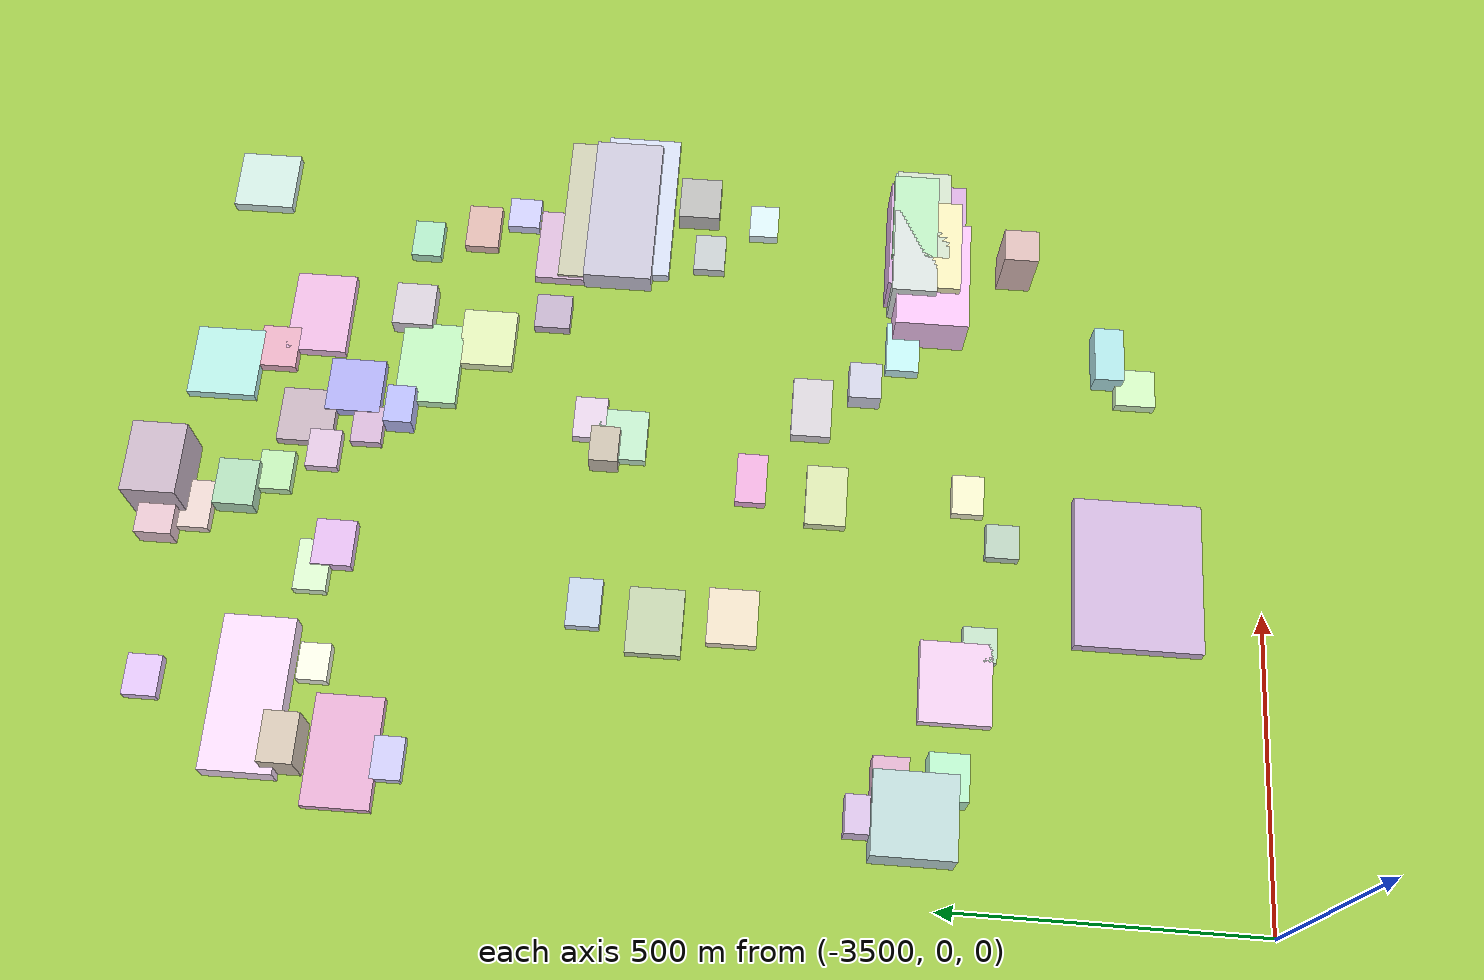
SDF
<sdf version="1.9">
 <world name="city_map">
  <model name="ground_plane">
   <static>1</static>
   <link name="link">
    <collision name="collision">
     <geometry><plane><normal>0 0 1</normal><size>11000 11000</size></plane></geometry>
    </collision>
    <visual name="visual">
     <geometry><plane><normal>0 0 1</normal><size>11000 11000</size></plane></geometry>
     <material>
      <ambient>0.551 0.712 0.210 1</ambient>
      <diffuse>0.651 0.812 0.310 1</diffuse>
      <specular>0.1 0.1 0.05 1</specular>
     </material>
    </visual>
   </link>
  </model>
  <model name="building_25714765">
   <static>1</static>
   <pose>-2955.97510524592 197.91584993413787 12.0 0 0 0</pose>
   <link name="link">
    <collision name="collision">
     <geometry><box><size>246.36152257760227 201.16530000050403 24.0</size></box></geometry>
    </collision>
    <visual name="visual">
     <cast_shadows>false</cast_shadows>
     <geometry><box><size>246.36152257760227 201.16530000050403 24.0</size></box></geometry>
     <material>
      <ambient>0.740 0.639 0.788 1</ambient>
      <diffuse>0.840 0.739 0.888 1</diffuse>
      <specular>0.252 0.222 0.266 1</specular>
      <emissive>0.01 0.01 0.01 1</emissive>
     </material>
    </visual>
   </link>
  </model>
  <model name="building_684449599">
   <static>1</static>
   <pose>-2346.618708589461 1037.980812742068 10.0 0 0 0</pose>
   <link name="link">
    <collision name="collision">
     <geometry><box><size>265.16789999996604 122.58789664311506 20</size></box></geometry>
    </collision>
    <visual name="visual">
     <cast_shadows>false</cast_shadows>
     <geometry><box><size>265.16789999996604 122.58789664311506 20</size></box></geometry>
     <material>
      <ambient>0.762 0.795 0.873 1</ambient>
      <diffuse>0.862 0.895 0.973 1</diffuse>
      <specular>0.259 0.268 0.292 1</specular>
      <emissive>0.01 0.01 0.01 1</emissive>
     </material>
    </visual>
   </link>
  </model>
  <model name="building_275146184">
   <static>1</static>
   <pose>-2369.0226320397446 1061.351405011938 21.11276111569614 0 0 0</pose>
   <link name="link">
    <collision name="collision">
     <geometry><box><size>261.10529999981225 113.28957244232905 42.22552223139228</size></box></geometry>
    </collision>
    <visual name="visual">
     <cast_shadows>false</cast_shadows>
     <geometry><box><size>261.10529999981225 113.28957244232905 42.22552223139228</size></box></geometry>
     <material>
      <ambient>0.717 0.703 0.778 1</ambient>
      <diffuse>0.817 0.803 0.878 1</diffuse>
      <specular>0.245 0.241 0.264 1</specular>
      <emissive>0.01 0.01 0.01 1</emissive>
     </material>
    </visual>
   </link>
  </model>
  <model name="building_468244094">
   <static>1</static>
   <pose>-2363.789195399912 1106.5859644838113 12.805303139556369 0 0 0</pose>
   <link name="link">
    <collision name="collision">
     <geometry><box><size>260.10629999996837 110.8043881858317 25.610606279112737</size></box></geometry>
    </collision>
    <visual name="visual">
     <cast_shadows>false</cast_shadows>
     <geometry><box><size>260.10629999996837 110.8043881858317 25.610606279112737</size></box></geometry>
     <material>
      <ambient>0.727 0.726 0.623 1</ambient>
      <diffuse>0.827 0.826 0.723 1</diffuse>
      <specular>0.248 0.248 0.217 1</specular>
      <emissive>0.01 0.01 0.01 1</emissive>
     </material>
    </visual>
   </link>
  </model>
  <model name="building_6302690">
   <static>1</static>
   <pose>-3257.278928376998 1552.8562125789 19.992731512019006 0 0 0</pose>
   <link name="link">
    <collision name="collision">
     <geometry><box><size>246.05679329559212 113.74170000023298 39.98546302403801</size></box></geometry>
    </collision>
    <visual name="visual">
     <cast_shadows>false</cast_shadows>
     <geometry><box><size>246.05679329559212 113.74170000023298 39.98546302403801</size></box></geometry>
     <material>
      <ambient>0.890 0.784 0.892 1</ambient>
      <diffuse>0.990 0.884 0.992 1</diffuse>
      <specular>0.297 0.265 0.298 1</specular>
      <emissive>0.01 0.01 0.01 1</emissive>
     </material>
    </visual>
   </link>
  </model>
  <model name="building_370139241">
   <static>1</static>
   <pose>-2404.8721287720805 550.7768881502016 42.0 0 0 0</pose>
   <link name="link">
    <collision name="collision">
     <geometry><box><size>189.18840000014114 124.50581138076582 84.0</size></box></geometry>
    </collision>
    <visual name="visual">
     <cast_shadows>false</cast_shadows>
     <geometry><box><size>189.18840000014114 124.50581138076582 84.0</size></box></geometry>
     <material>
      <ambient>0.777 0.610 0.803 1</ambient>
      <diffuse>0.877 0.710 0.903 1</diffuse>
      <specular>0.263 0.213 0.271 1</specular>
      <emissive>0.01 0.01 0.01 1</emissive>
     </material>
    </visual>
   </link>
  </model>
  <model name="building_857352540">
   <static>1</static>
   <pose>-2476.873180641099 538.8608444544831 42.0 0 0 0</pose>
   <link name="link">
    <collision name="collision">
     <geometry><box><size>187.90114202199183 118.60350000026187 84.0</size></box></geometry>
    </collision>
    <visual name="visual">
     <cast_shadows>false</cast_shadows>
     <geometry><box><size>187.90114202199183 118.60350000026187 84.0</size></box></geometry>
     <material>
      <ambient>0.891 0.700 0.885 1</ambient>
      <diffuse>0.991 0.800 0.985 1</diffuse>
      <specular>0.297 0.240 0.296 1</specular>
      <emissive>0.01 0.01 0.01 1</emissive>
     </material>
    </visual>
   </link>
  </model>
  <model name="building_561598546">
   <static>1</static>
   <pose>-3331.290340237867 1400.045698743589 10.0 0 0 0</pose>
   <link name="link">
    <collision name="collision">
     <geometry><box><size>175.08543400550755 106.42679999993021 20</size></box></geometry>
    </collision>
    <visual name="visual">
     <cast_shadows>false</cast_shadows>
     <geometry><box><size>175.08543400550755 106.42679999993021 20</size></box></geometry>
     <material>
      <ambient>0.826 0.607 0.755 1</ambient>
      <diffuse>0.926 0.707 0.855 1</diffuse>
      <specular>0.278 0.212 0.256 1</specular>
      <emissive>0.01 0.01 0.01 1</emissive>
     </material>
    </visual>
   </link>
  </model>
  <model name="building_623820183">
   <static>1</static>
   <pose>-3370.3349665781247 538.3425926976373 30.377859926171734 0 0 0</pose>
   <link name="link">
    <collision name="collision">
     <geometry><box><size>129.68130000037092 128.77458538619112 60.75571985234347</size></box></geometry>
    </collision>
    <visual name="visual">
     <cast_shadows>false</cast_shadows>
     <geometry><box><size>129.68130000037092 128.77458538619112 60.75571985234347</size></box></geometry>
     <material>
      <ambient>0.668 0.778 0.773 1</ambient>
      <diffuse>0.768 0.878 0.873 1</diffuse>
      <specular>0.230 0.263 0.262 1</specular>
      <emissive>0.01 0.01 0.01 1</emissive>
     </material>
    </visual>
   </link>
  </model>
  <model name="building_268401375">
   <static>1</static>
   <pose>-3152.317726136773 478.5498585153348 10.0 0 0 0</pose>
   <link name="link">
    <collision name="collision">
     <geometry><box><size>130.5927325714088 112.56509999989106 20</size></box></geometry>
    </collision>
    <visual name="visual">
     <cast_shadows>false</cast_shadows>
     <geometry><box><size>130.5927325714088 112.56509999989106 20</size></box></geometry>
     <material>
      <ambient>0.868 0.737 0.857 1</ambient>
      <diffuse>0.968 0.837 0.957 1</diffuse>
      <specular>0.290 0.251 0.287 1</specular>
      <emissive>0.01 0.01 0.01 1</emissive>
     </material>
    </visual>
   </link>
  </model>
  <model name="building_3232239">
   <static>1</static>
   <pose>-2431.6773196393583 541.4809125727706 50.0 0 0 0</pose>
   <link name="link">
    <collision name="collision">
     <geometry><box><size>159.97319999944892 90.35383014429841 100</size></box></geometry>
    </collision>
    <visual name="visual">
     <cast_shadows>false</cast_shadows>
     <geometry><box><size>159.97319999944892 90.35383014429841 100</size></box></geometry>
     <material>
      <ambient>0.887 0.863 0.661 1</ambient>
      <diffuse>0.987 0.963 0.761 1</diffuse>
      <specular>0.296 0.289 0.228 1</specular>
      <emissive>0.01 0.01 0.01 1</emissive>
     </material>
    </visual>
   </link>
  </model>
  <model name="building_490548782">
   <static>1</static>
   <pose>-2671.6375117947237 1354.9762242111226 10.0 0 0 0</pose>
   <link name="link">
    <collision name="collision">
     <geometry><box><size>142.10219999961282 100.14309373921627 20</size></box></geometry>
    </collision>
    <visual name="visual">
     <cast_shadows>false</cast_shadows>
     <geometry><box><size>142.10219999961282 100.14309373921627 20</size></box></geometry>
     <material>
      <ambient>0.675 0.869 0.668 1</ambient>
      <diffuse>0.775 0.969 0.768 1</diffuse>
      <specular>0.233 0.291 0.230 1</specular>
      <emissive>0.01 0.01 0.01 1</emissive>
     </material>
    </visual>
   </link>
  </model>
  <model name="building_629411819">
   <static>1</static>
   <pose>-2375.5355641070764 560.3015984678884 50.0 0 0 0</pose>
   <link name="link">
    <collision name="collision">
     <geometry><box><size>159.5180999996515 88.28729780091369 100</size></box></geometry>
    </collision>
    <visual name="visual">
     <cast_shadows>false</cast_shadows>
     <geometry><box><size>159.5180999996515 88.28729780091369 100</size></box></geometry>
     <material>
      <ambient>0.750 0.806 0.724 1</ambient>
      <diffuse>0.850 0.906 0.824 1</diffuse>
      <specular>0.255 0.272 0.247 1</specular>
      <emissive>0.01 0.01 0.01 1</emissive>
     </material>
    </visual>
   </link>
  </model>
  <model name="building_699712457">
   <static>1</static>
   <pose>-2592.5132394787643 1546.9713093336397 10.0 0 0 0</pose>
   <link name="link">
    <collision name="collision">
     <geometry><box><size>141.73256873768767 98.88990000018794 20</size></box></geometry>
    </collision>
    <visual name="visual">
     <cast_shadows>false</cast_shadows>
     <geometry><box><size>141.73256873768767 98.88990000018794 20</size></box></geometry>
     <material>
      <ambient>0.848 0.654 0.809 1</ambient>
      <diffuse>0.948 0.754 0.909 1</diffuse>
      <specular>0.284 0.226 0.273 1</specular>
      <emissive>0.01 0.01 0.01 1</emissive>
     </material>
    </visual>
   </link>
  </model>
  <model name="building_129499148">
   <static>1</static>
   <pose>-2694.057258564886 1689.4367140483969 10.0 0 0 0</pose>
   <link name="link">
    <collision name="collision">
     <geometry><box><size>119.24458913818034 111.67709999976694 20</size></box></geometry>
    </collision>
    <visual name="visual">
     <cast_shadows>false</cast_shadows>
     <geometry><box><size>119.24458913818034 111.67709999976694 20</size></box></geometry>
     <material>
      <ambient>0.642 0.851 0.823 1</ambient>
      <diffuse>0.742 0.951 0.923 1</diffuse>
      <specular>0.223 0.285 0.277 1</specular>
      <emissive>0.01 0.01 0.01 1</emissive>
     </material>
    </visual>
   </link>
  </model>
  <model name="building_857728000">
   <static>1</static>
   <pose>-2379.6414216712924 572.5649162779604 50.0 0 0 0</pose>
   <link name="link">
    <collision name="collision">
     <geometry><box><size>150.19410000031996 72.8084762671258 100</size></box></geometry>
    </collision>
    <visual name="visual">
     <cast_shadows>false</cast_shadows>
     <geometry><box><size>150.19410000031996 72.8084762671258 100</size></box></geometry>
     <material>
      <ambient>0.661 0.855 0.680 1</ambient>
      <diffuse>0.761 0.955 0.780 1</diffuse>
      <specular>0.228 0.286 0.234 1</specular>
      <emissive>0.01 0.01 0.01 1</emissive>
     </material>
    </visual>
   </link>
  </model>
  <model name="building_925492851">
   <static>1</static>
   <pose>-2434.33604529165 1157.7504567298179 10.0 0 0 0</pose>
   <link name="link">
    <collision name="collision">
     <geometry><box><size>127.09500000011786 85.4607197659712 20</size></box></geometry>
    </collision>
    <visual name="visual">
     <cast_shadows>false</cast_shadows>
     <geometry><box><size>127.09500000011786 85.4607197659712 20</size></box></geometry>
     <material>
      <ambient>0.780 0.655 0.775 1</ambient>
      <diffuse>0.880 0.755 0.875 1</diffuse>
      <specular>0.264 0.227 0.263 1</specular>
      <emissive>0.01 0.01 0.01 1</emissive>
     </material>
    </visual>
   </link>
  </model>
  <model name="building_929124349">
   <static>1</static>
   <pose>-2444.8944480141968 570.6746025242448 50.0 0 0 0</pose>
   <link name="link">
    <collision name="collision">
     <geometry><box><size>147.98519999974502 72.3560226533465 100</size></box></geometry>
    </collision>
    <visual name="visual">
     <cast_shadows>false</cast_shadows>
     <geometry><box><size>147.98519999974502 72.3560226533465 100</size></box></geometry>
     <material>
      <ambient>0.777 0.809 0.801 1</ambient>
      <diffuse>0.877 0.909 0.901 1</diffuse>
      <specular>0.263 0.273 0.270 1</specular>
      <emissive>0.01 0.01 0.01 1</emissive>
     </material>
    </visual>
   </link>
  </model>
  <model name="building_934483975">
   <static>1</static>
   <pose>-2903.196558103238 1750.7344680375506 46.32806958840219 0 0 0</pose>
   <link name="link">
    <collision name="collision">
     <geometry><box><size>118.23719999992477 87.5433765235199 92.65613917680437</size></box></geometry>
    </collision>
    <visual name="visual">
     <cast_shadows>false</cast_shadows>
     <geometry><box><size>118.23719999992477 87.5433765235199 92.65613917680437</size></box></geometry>
     <material>
      <ambient>0.713 0.637 0.705 1</ambient>
      <diffuse>0.813 0.737 0.805 1</diffuse>
      <specular>0.244 0.221 0.241 1</specular>
      <emissive>0.01 0.01 0.01 1</emissive>
     </material>
    </visual>
   </link>
  </model>
  <model name="building_835273102">
   <static>1</static>
   <pose>-2345.555755919729 1678.9257110352528 10.0 0 0 0</pose>
   <link name="link">
    <collision name="collision">
     <geometry><box><size>101.74260000039936 99.51573423051971 20</size></box></geometry>
    </collision>
    <visual name="visual">
     <cast_shadows>false</cast_shadows>
     <geometry><box><size>101.74260000039936 99.51573423051971 20</size></box></geometry>
     <material>
      <ambient>0.738 0.841 0.810 1</ambient>
      <diffuse>0.838 0.941 0.910 1</diffuse>
      <specular>0.251 0.282 0.273 1</specular>
      <emissive>0.01 0.01 0.01 1</emissive>
     </material>
    </visual>
   </link>
  </model>
  <model name="building_747862416">
   <static>1</static>
   <pose>-3088.7501537702274 947.063788895543 10.0 0 0 0</pose>
   <link name="link">
    <collision name="collision">
     <geometry><box><size>107.84759999997107 86.99701086928795 20</size></box></geometry>
    </collision>
    <visual name="visual">
     <cast_shadows>false</cast_shadows>
     <geometry><box><size>107.84759999997107 86.99701086928795 20</size></box></geometry>
     <material>
      <ambient>0.689 0.751 0.603 1</ambient>
      <diffuse>0.789 0.851 0.703 1</diffuse>
      <specular>0.237 0.255 0.211 1</specular>
      <emissive>0.01 0.01 0.01 1</emissive>
     </material>
    </visual>
   </link>
  </model>
  <model name="building_505794163">
   <static>1</static>
   <pose>-2618.62243027066 1264.9534855083332 10.0 0 0 0</pose>
   <link name="link">
    <collision name="collision">
     <geometry><box><size>100.19969999972034 89.1859832659298 20</size></box></geometry>
    </collision>
    <visual name="visual">
     <cast_shadows>false</cast_shadows>
     <geometry><box><size>100.19969999972034 89.1859832659298 20</size></box></geometry>
     <material>
      <ambient>0.806 0.865 0.643 1</ambient>
      <diffuse>0.906 0.965 0.743 1</diffuse>
      <specular>0.272 0.290 0.223 1</specular>
      <emissive>0.01 0.01 0.01 1</emissive>
     </material>
    </visual>
   </link>
  </model>
  <model name="building_551567213">
   <static>1</static>
   <pose>-2349.7679593203934 570.0523227687552 42.0 0 0 0</pose>
   <link name="link">
    <collision name="collision">
     <geometry><box><size>119.67020264794672 73.2266999999922 84.0</size></box></geometry>
    </collision>
    <visual name="visual">
     <cast_shadows>false</cast_shadows>
     <geometry><box><size>119.67020264794672 73.2266999999922 84.0</size></box></geometry>
     <material>
      <ambient>0.708 0.879 0.825 1</ambient>
      <diffuse>0.808 0.979 0.925 1</diffuse>
      <specular>0.242 0.294 0.277 1</specular>
      <emissive>0.01 0.01 0.01 1</emissive>
     </material>
    </visual>
   </link>
  </model>
  <model name="building_572625393">
   <static>1</static>
   <pose>-2722.0679111607524 1470.5210289948825 10.5 0 0 0</pose>
   <link name="link">
    <collision name="collision">
     <geometry><box><size>92.2950976559139 89.72130000030631 21.0</size></box></geometry>
    </collision>
    <visual name="visual">
     <cast_shadows>false</cast_shadows>
     <geometry><box><size>92.2950976559139 89.72130000030631 21.0</size></box></geometry>
     <material>
      <ambient>0.614 0.609 0.873 1</ambient>
      <diffuse>0.714 0.709 0.973 1</diffuse>
      <specular>0.214 0.213 0.292 1</specular>
      <emissive>0.01 0.01 0.01 1</emissive>
     </material>
    </visual>
   </link>
  </model>
  <model name="building_268097168">
   <static>1</static>
   <pose>-2780.615793035097 1540.701336296442 10.0 0 0 0</pose>
   <link name="link">
    <collision name="collision">
     <geometry><box><size>92.17898077526098 89.79899999963692 20</size></box></geometry>
    </collision>
    <visual name="visual">
     <cast_shadows>false</cast_shadows>
     <geometry><box><size>92.17898077526098 89.79899999963692 20</size></box></geometry>
     <material>
      <ambient>0.703 0.626 0.670 1</ambient>
      <diffuse>0.803 0.726 0.770 1</diffuse>
      <specular>0.241 0.218 0.231 1</specular>
      <emissive>0.01 0.01 0.01 1</emissive>
     </material>
    </visual>
   </link>
  </model>
  <model name="building_97481836">
   <static>1</static>
   <pose>-3072.5104610032295 826.9344304703311 10.0 0 0 0</pose>
   <link name="link">
    <collision name="collision">
     <geometry><box><size>90.8418060605524 78.76560000004673 20</size></box></geometry>
    </collision>
    <visual name="visual">
     <cast_shadows>false</cast_shadows>
     <geometry><box><size>90.8418060605524 78.76560000004673 20</size></box></geometry>
     <material>
      <ambient>0.860 0.803 0.707 1</ambient>
      <diffuse>0.960 0.903 0.807 1</diffuse>
      <specular>0.288 0.271 0.242 1</specular>
      <emissive>0.01 0.01 0.01 1</emissive>
     </material>
    </visual>
   </link>
  </model>
  <model name="building_176398613">
   <static>1</static>
   <pose>-2776.5705291465047 1025.9047789591546 10.0 0 0 0</pose>
   <link name="link">
    <collision name="collision">
     <geometry><box><size>87.06332350498677 78.77669999938774 20</size></box></geometry>
    </collision>
    <visual name="visual">
     <cast_shadows>false</cast_shadows>
     <geometry><box><size>87.06332350498677 78.77669999938774 20</size></box></geometry>
     <material>
      <ambient>0.687 0.849 0.722 1</ambient>
      <diffuse>0.787 0.949 0.822 1</diffuse>
      <specular>0.236 0.285 0.247 1</specular>
      <emissive>0.01 0.01 0.01 1</emissive>
     </material>
    </visual>
   </link>
  </model>
  <model name="building_426549582">
   <static>1</static>
   <pose>-2857.585191111405 691.9769420851726 10.0 0 0 0</pose>
   <link name="link">
    <collision name="collision">
     <geometry><box><size>101.58193462191385 65.3789999997727 20</size></box></geometry>
    </collision>
    <visual name="visual">
     <cast_shadows>false</cast_shadows>
     <geometry><box><size>101.58193462191385 65.3789999997727 20</size></box></geometry>
     <material>
      <ambient>0.779 0.824 0.614 1</ambient>
      <diffuse>0.879 0.924 0.714 1</diffuse>
      <specular>0.264 0.277 0.214 1</specular>
      <emissive>0.01 0.01 0.01 1</emissive>
     </material>
    </visual>
   </link>
  </model>
  <model name="building_135497535">
   <static>1</static>
   <pose>-2706.083822466621 723.17316266169 12.0 0 0 0</pose>
   <link name="link">
    <collision name="collision">
     <geometry><box><size>102.44190000068443 64.2700189507696 24.0</size></box></geometry>
    </collision>
    <visual name="visual">
     <cast_shadows>false</cast_shadows>
     <geometry><box><size>102.44190000068443 64.2700189507696 24.0</size></box></geometry>
     <material>
      <ambient>0.772 0.753 0.778 1</ambient>
      <diffuse>0.872 0.853 0.878 1</diffuse>
      <specular>0.262 0.256 0.263 1</specular>
      <emissive>0.01 0.01 0.01 1</emissive>
     </material>
    </visual>
   </link>
  </model>
  <model name="building_353279448">
   <static>1</static>
   <pose>-2949.144272306843 1700.5218043633672 10.0 0 0 0</pose>
   <link name="link">
    <collision name="collision">
     <geometry><box><size>80.97449999983297 64.10869315225803 20</size></box></geometry>
    </collision>
    <visual name="visual">
     <cast_shadows>false</cast_shadows>
     <geometry><box><size>80.97449999983297 64.10869315225803 20</size></box></geometry>
     <material>
      <ambient>0.845 0.761 0.739 1</ambient>
      <diffuse>0.945 0.861 0.839 1</diffuse>
      <specular>0.284 0.258 0.252 1</specular>
      <emissive>0.01 0.01 0.01 1</emissive>
     </material>
    </visual>
   </link>
  </model>
  <model name="building_178369548">
   <static>1</static>
   <pose>-2335.58909960276 933.0770639932326 19.5 0 0 0</pose>
   <link name="link">
    <collision name="collision">
     <geometry><box><size>74.59921026273452 68.2094999997247 39.0</size></box></geometry>
    </collision>
    <visual name="visual">
     <cast_shadows>false</cast_shadows>
     <geometry><box><size>74.59921026273452 68.2094999997247 39.0</size></box></geometry>
     <material>
      <ambient>0.659 0.657 0.651 1</ambient>
      <diffuse>0.759 0.757 0.751 1</diffuse>
      <specular>0.228 0.227 0.225 1</specular>
      <emissive>0.01 0.01 0.01 1</emissive>
     </material>
    </visual>
   </link>
  </model>
  <model name="building_775422875">
   <static>1</static>
   <pose>-2912.575790588366 1631.7892550072045 18.0 0 0 0</pose>
   <link name="link">
    <collision name="collision">
     <geometry><box><size>77.53349999984493 65.24384234209386 36.0</size></box></geometry>
    </collision>
    <visual name="visual">
     <cast_shadows>false</cast_shadows>
     <geometry><box><size>77.53349999984493 65.24384234209386 36.0</size></box></geometry>
     <material>
      <ambient>0.620 0.790 0.654 1</ambient>
      <diffuse>0.720 0.890 0.754 1</diffuse>
      <specular>0.216 0.267 0.226 1</specular>
      <emissive>0.01 0.01 0.01 1</emissive>
     </material>
    </visual>
   </link>
  </model>
  <model name="building_317784517">
   <static>1</static>
   <pose>-2571.5041991745384 1391.7644565819433 16.5 0 0 0</pose>
   <link name="link">
    <collision name="collision">
     <geometry><box><size>75.1136999999602 67.11061992730039 33.0</size></box></geometry>
    </collision>
    <visual name="visual">
     <cast_shadows>false</cast_shadows>
     <geometry><box><size>75.1136999999602 67.11061992730039 33.0</size></box></geometry>
     <material>
      <ambient>0.768 0.736 0.776 1</ambient>
      <diffuse>0.868 0.836 0.876 1</diffuse>
      <specular>0.260 0.251 0.263 1</specular>
      <emissive>0.01 0.01 0.01 1</emissive>
     </material>
    </visual>
   </link>
  </model>
  <model name="building_421332775">
   <static>1</static>
   <pose>-3252.894728999514 1554.9176076693484 10.0 0 0 0</pose>
   <link name="link">
    <collision name="collision">
     <geometry><box><size>84.03810000014289 58.58076402153311 20</size></box></geometry>
    </collision>
    <visual name="visual">
     <cast_shadows>false</cast_shadows>
     <geometry><box><size>84.03810000014289 58.58076402153311 20</size></box></geometry>
     <material>
      <ambient>0.858 0.667 0.862 1</ambient>
      <diffuse>0.958 0.767 0.962 1</diffuse>
      <specular>0.287 0.230 0.289 1</specular>
      <emissive>0.01 0.01 0.01 1</emissive>
     </material>
    </visual>
   </link>
  </model>
  <model name="building_569739269">
   <static>1</static>
   <pose>-2998.9106689900486 1463.5142660182255 12.0 0 0 0</pose>
   <link name="link">
    <collision name="collision">
     <geometry><box><size>76.2681000000427 64.31411852074146 24.0</size></box></geometry>
    </collision>
    <visual name="visual">
     <cast_shadows>false</cast_shadows>
     <geometry><box><size>76.2681000000427 64.31411852074146 24.0</size></box></geometry>
     <material>
      <ambient>0.814 0.660 0.852 1</ambient>
      <diffuse>0.914 0.760 0.952 1</diffuse>
      <specular>0.274 0.228 0.286 1</specular>
      <emissive>0.01 0.01 0.01 1</emissive>
     </material>
    </visual>
   </link>
  </model>
  <model name="building_286092834">
   <static>1</static>
   <pose>-3285.3284092530366 1523.4194207982812 10.0 0 0 0</pose>
   <link name="link">
    <collision name="collision">
     <geometry><box><size>89.9987999996057 52.50419144734868 20</size></box></geometry>
    </collision>
    <visual name="visual">
     <cast_shadows>false</cast_shadows>
     <geometry><box><size>89.9987999996057 52.50419144734868 20</size></box></geometry>
     <material>
      <ambient>0.866 0.620 0.752 1</ambient>
      <diffuse>0.966 0.720 0.852 1</diffuse>
      <specular>0.290 0.216 0.256 1</specular>
      <emissive>0.01 0.01 0.01 1</emissive>
     </material>
    </visual>
   </link>
  </model>
  <model name="building_448144247">
   <static>1</static>
   <pose>-2585.4253132292292 579.3041524985491 12.0 0 0 0</pose>
   <link name="link">
    <collision name="collision">
     <geometry><box><size>86.34690000030787 53.689408201594375 24.0</size></box></geometry>
    </collision>
    <visual name="visual">
     <cast_shadows>false</cast_shadows>
     <geometry><box><size>86.34690000030787 53.689408201594375 24.0</size></box></geometry>
     <material>
      <ambient>0.692 0.874 0.875 1</ambient>
      <diffuse>0.792 0.974 0.975 1</diffuse>
      <specular>0.238 0.292 0.292 1</specular>
      <emissive>0.01 0.01 0.01 1</emissive>
     </material>
    </visual>
   </link>
  </model>
  <model name="building_838089335">
   <static>1</static>
   <pose>-2660.5602257644555 1606.8927109305068 10.0 0 0 0</pose>
   <link name="link">
    <collision name="collision">
     <geometry><box><size>72.66060000047503 63.4480976396571 20</size></box></geometry>
    </collision>
    <visual name="visual">
     <cast_shadows>false</cast_shadows>
     <geometry><box><size>72.66060000047503 63.4480976396571 20</size></box></geometry>
     <material>
      <ambient>0.833 0.614 0.689 1</ambient>
      <diffuse>0.933 0.714 0.789 1</diffuse>
      <specular>0.280 0.214 0.237 1</specular>
      <emissive>0.01 0.01 0.01 1</emissive>
     </material>
    </visual>
   </link>
  </model>
  <model name="building_632103590">
   <static>1</static>
   <pose>-3037.294668611498 1492.0494018184536 10.0 0 0 0</pose>
   <link name="link">
    <collision name="collision">
     <geometry><box><size>84.85950000027742 52.639593140583 20</size></box></geometry>
    </collision>
    <visual name="visual">
     <cast_shadows>false</cast_shadows>
     <geometry><box><size>84.85950000027742 52.639593140583 20</size></box></geometry>
     <material>
      <ambient>0.784 0.889 0.736 1</ambient>
      <diffuse>0.884 0.989 0.836 1</diffuse>
      <specular>0.265 0.297 0.251 1</specular>
      <emissive>0.01 0.01 0.01 1</emissive>
     </material>
    </visual>
   </link>
  </model>
  <model name="building_146028119">
   <static>1</static>
   <pose>-3308.4538148407405 489.12734643813417 26.933911235068173 0 0 0</pose>
   <link name="link">
    <collision name="collision">
     <geometry><box><size>72.93810000056311 61.017929926677816 53.867822470136346</size></box></geometry>
    </collision>
    <visual name="visual">
     <cast_shadows>false</cast_shadows>
     <geometry><box><size>72.93810000056311 61.017929926677816 53.867822470136346</size></box></geometry>
     <material>
      <ambient>0.651 0.878 0.724 1</ambient>
      <diffuse>0.751 0.978 0.824 1</diffuse>
      <specular>0.225 0.293 0.247 1</specular>
      <emissive>0.01 0.01 0.01 1</emissive>
     </material>
    </visual>
   </link>
  </model>
  <model name="building_951373743">
   <static>1</static>
   <pose>-2580.207635223002 243.47018748313633 20.31831066090031 0 0 0</pose>
   <link name="link">
    <collision name="collision">
     <geometry><box><size>93.11523467251797 47.496899999806885 40.63662132180062</size></box></geometry>
    </collision>
    <visual name="visual">
     <cast_shadows>false</cast_shadows>
     <geometry><box><size>93.11523467251797 47.496899999806885 40.63662132180062</size></box></geometry>
     <material>
      <ambient>0.614 0.822 0.832 1</ambient>
      <diffuse>0.714 0.922 0.932 1</diffuse>
      <specular>0.214 0.277 0.280 1</specular>
      <emissive>0.01 0.01 0.01 1</emissive>
     </material>
    </visual>
   </link>
  </model>
  <model name="building_823429789">
   <static>1</static>
   <pose>-2408.2434952891554 1297.2055739812217 10.0 0 0 0</pose>
   <link name="link">
    <collision name="collision">
     <geometry><box><size>78.38819999957991 55.740905776258494 20</size></box></geometry>
    </collision>
    <visual name="visual">
     <cast_shadows>false</cast_shadows>
     <geometry><box><size>78.38819999957991 55.740905776258494 20</size></box></geometry>
     <material>
      <ambient>0.795 0.646 0.613 1</ambient>
      <diffuse>0.895 0.746 0.713 1</diffuse>
      <specular>0.268 0.224 0.214 1</specular>
      <emissive>0.01 0.01 0.01 1</emissive>
     </material>
    </visual>
   </link>
  </model>
  <model name="building_495958808">
   <static>1</static>
   <pose>-3329.8063659224517 1487.4117664431963 36.69165621721963 0 0 0</pose>
   <link name="link">
    <collision name="collision">
     <geometry><box><size>79.66470000030057 54.61111041948305 73.38331243443926</size></box></geometry>
    </collision>
    <visual name="visual">
     <cast_shadows>false</cast_shadows>
     <geometry><box><size>79.66470000030057 54.61111041948305 73.38331243443926</size></box></geometry>
     <material>
      <ambient>0.758 0.698 0.630 1</ambient>
      <diffuse>0.858 0.798 0.730 1</diffuse>
      <specular>0.257 0.239 0.219 1</specular>
      <emissive>0.01 0.01 0.01 1</emissive>
     </material>
    </visual>
   </link>
  </model>
  <model name="building_67410541">
   <static>1</static>
   <pose>-2975.13410114969 1747.5081303928407 21.0 0 0 0</pose>
   <link name="link">
    <collision name="collision">
     <geometry><box><size>73.27110000051107 59.19260310395065 42.0</size></box></geometry>
    </collision>
    <visual name="visual">
     <cast_shadows>false</cast_shadows>
     <geometry><box><size>73.27110000051107 59.19260310395065 42.0</size></box></geometry>
     <material>
      <ambient>0.828 0.694 0.735 1</ambient>
      <diffuse>0.928 0.794 0.835 1</diffuse>
      <specular>0.278 0.238 0.250 1</specular>
      <emissive>0.01 0.01 0.01 1</emissive>
     </material>
    </visual>
   </link>
  </model>
  <model name="building_264212646">
   <static>1</static>
   <pose>-3066.6121672474956 1059.9513417477137 10.0 0 0 0</pose>
   <link name="link">
    <collision name="collision">
     <geometry><box><size>79.27680601177336 53.3910000000688 20</size></box></geometry>
    </collision>
    <visual name="visual">
     <cast_shadows>false</cast_shadows>
     <geometry><box><size>79.27680601177336 53.3910000000688 20</size></box></geometry>
     <material>
      <ambient>0.705 0.762 0.840 1</ambient>
      <diffuse>0.805 0.862 0.940 1</diffuse>
      <specular>0.242 0.259 0.282 1</specular>
      <emissive>0.01 0.01 0.01 1</emissive>
     </material>
    </visual>
   </link>
  </model>
  <model name="building_2358366">
   <static>1</static>
   <pose>-2628.829197954335 197.90334050523796 10.0 0 0 0</pose>
   <link name="link">
    <collision name="collision">
     <geometry><box><size>65.00638669193816 64.56869999976789 20</size></box></geometry>
    </collision>
    <visual name="visual">
     <cast_shadows>false</cast_shadows>
     <geometry><box><size>65.00638669193816 64.56869999976789 20</size></box></geometry>
     <material>
      <ambient>0.748 0.891 0.682 1</ambient>
      <diffuse>0.848 0.991 0.782 1</diffuse>
      <specular>0.255 0.297 0.234 1</specular>
      <emissive>0.01 0.01 0.01 1</emissive>
     </material>
    </visual>
   </link>
  </model>
  <model name="building_577194606">
   <static>1</static>
   <pose>-2837.037109004064 813.1216378326908 10.0 0 0 0</pose>
   <link name="link">
    <collision name="collision">
     <geometry><box><size>84.3118828159861 48.72900000000868 20</size></box></geometry>
    </collision>
    <visual name="visual">
     <cast_shadows>false</cast_shadows>
     <geometry><box><size>84.3118828159861 48.72900000000868 20</size></box></geometry>
     <material>
      <ambient>0.856 0.612 0.796 1</ambient>
      <diffuse>0.956 0.712 0.896 1</diffuse>
      <specular>0.287 0.214 0.269 1</specular>
      <emissive>0.01 0.01 0.01 1</emissive>
     </material>
    </visual>
   </link>
  </model>
  <model name="building_871176724">
   <static>1</static>
   <pose>-3318.9297572886367 575.4149657989371 24.57383032966973 0 0 0</pose>
   <link name="link">
    <collision name="collision">
     <geometry><box><size>72.64950000034531 55.19540946661378 49.14766065933946</size></box></geometry>
    </collision>
    <visual name="visual">
     <cast_shadows>false</cast_shadows>
     <geometry><box><size>72.64950000034531 55.19540946661378 49.14766065933946</size></box></geometry>
     <material>
      <ambient>0.800 0.620 0.726 1</ambient>
      <diffuse>0.900 0.720 0.826 1</diffuse>
      <specular>0.270 0.216 0.248 1</specular>
      <emissive>0.01 0.01 0.01 1</emissive>
     </material>
    </visual>
   </link>
  </model>
  <model name="building_448145216">
   <static>1</static>
   <pose>-2750.045591955808 1081.666254796664 10.0 0 0 0</pose>
   <link name="link">
    <collision name="collision">
     <geometry><box><size>71.53949999999298 52.92744155681954 20</size></box></geometry>
    </collision>
    <visual name="visual">
     <cast_shadows>false</cast_shadows>
     <geometry><box><size>71.53949999999298 52.92744155681954 20</size></box></geometry>
     <material>
      <ambient>0.824 0.754 0.835 1</ambient>
      <diffuse>0.924 0.854 0.935 1</diffuse>
      <specular>0.277 0.256 0.281 1</specular>
      <emissive>0.01 0.01 0.01 1</emissive>
     </material>
    </visual>
   </link>
  </model>
  <model name="building_382227763">
   <static>1</static>
   <pose>-2382.6390889086456 1048.7606110172617 10.5 0 0 0</pose>
   <link name="link">
    <collision name="collision">
     <geometry><box><size>78.17730000027012 47.06654929240703 21.0</size></box></geometry>
    </collision>
    <visual name="visual">
     <cast_shadows>false</cast_shadows>
     <geometry><box><size>78.17730000027012 47.06654929240703 21.0</size></box></geometry>
     <material>
      <ambient>0.800 0.876 0.867 1</ambient>
      <diffuse>0.900 0.976 0.967 1</diffuse>
      <specular>0.270 0.293 0.290 1</specular>
      <emissive>0.01 0.01 0.01 1</emissive>
     </material>
    </visual>
   </link>
  </model>
  <model name="building_891175579">
   <static>1</static>
   <pose>-2881.130703301872 1576.5995064146605 10.0 0 0 0</pose>
   <link name="link">
    <collision name="collision">
     <geometry><box><size>67.02180000004176 54.57643985312719 20</size></box></geometry>
    </collision>
    <visual name="visual">
     <cast_shadows>false</cast_shadows>
     <geometry><box><size>67.02180000004176 54.57643985312719 20</size></box></geometry>
     <material>
      <ambient>0.682 0.858 0.636 1</ambient>
      <diffuse>0.782 0.958 0.736 1</diffuse>
      <specular>0.235 0.287 0.221 1</specular>
      <emissive>0.01 0.01 0.01 1</emissive>
     </material>
    </visual>
   </link>
  </model>
  <model name="building_257579969">
   <static>1</static>
   <pose>-2560.801911715759 1162.0274179530988 10.0 0 0 0</pose>
   <link name="link">
    <collision name="collision">
     <geometry><box><size>60.83909999956205 58.80143962928758 20</size></box></geometry>
    </collision>
    <visual name="visual">
     <cast_shadows>false</cast_shadows>
     <geometry><box><size>60.83909999956205 58.80143962928758 20</size></box></geometry>
     <material>
      <ambient>0.688 0.617 0.719 1</ambient>
      <diffuse>0.788 0.717 0.819 1</diffuse>
      <specular>0.236 0.215 0.246 1</specular>
      <emissive>0.01 0.01 0.01 1</emissive>
     </material>
    </visual>
   </link>
  </model>
  <model name="building_971259376">
   <static>1</static>
   <pose>-3236.1774408404226 1725.0362303446125 10.5 0 0 0</pose>
   <link name="link">
    <collision name="collision">
     <geometry><box><size>65.8771791328249 54.27900000019292 21.0</size></box></geometry>
    </collision>
    <visual name="visual">
     <cast_shadows>false</cast_shadows>
     <geometry><box><size>65.8771791328249 54.27900000019292 21.0</size></box></geometry>
     <material>
      <ambient>0.809 0.696 0.884 1</ambient>
      <diffuse>0.909 0.796 0.984 1</diffuse>
      <specular>0.273 0.239 0.295 1</specular>
      <emissive>0.01 0.01 0.01 1</emissive>
     </material>
    </visual>
   </link>
  </model>
  <model name="building_518515285">
   <static>1</static>
   <pose>-2837.186638448333 1505.8906525622965 10.0 0 0 0</pose>
   <link name="link">
    <collision name="collision">
     <geometry><box><size>65.63430000039006 51.99117652118285 20</size></box></geometry>
    </collision>
    <visual name="visual">
     <cast_shadows>false</cast_shadows>
     <geometry><box><size>65.63430000039006 51.99117652118285 20</size></box></geometry>
     <material>
      <ambient>0.803 0.700 0.803 1</ambient>
      <diffuse>0.903 0.800 0.903 1</diffuse>
      <specular>0.271 0.240 0.271 1</specular>
      <emissive>0.01 0.01 0.01 1</emissive>
     </material>
    </visual>
   </link>
  </model>
  <model name="building_379326882">
   <static>1</static>
   <pose>-2429.3035626818255 910.066934626491 10.0 0 0 0</pose>
   <link name="link">
    <collision name="collision">
     <geometry><box><size>66.16710000030679 51.45715673764203 20</size></box></geometry>
    </collision>
    <visual name="visual">
     <cast_shadows>false</cast_shadows>
     <geometry><box><size>66.16710000030679 51.45715673764203 20</size></box></geometry>
     <material>
      <ambient>0.702 0.728 0.735 1</ambient>
      <diffuse>0.802 0.828 0.835 1</diffuse>
      <specular>0.241 0.248 0.251 1</specular>
      <emissive>0.01 0.01 0.01 1</emissive>
     </material>
    </visual>
   </link>
  </model>
  <model name="building_209169316">
   <static>1</static>
   <pose>-2839.3561228797043 466.3935961026223 10.0 0 0 0</pose>
   <link name="link">
    <collision name="collision">
     <geometry><box><size>66.69116942804065 50.54939999998709 20</size></box></geometry>
    </collision>
    <visual name="visual">
     <cast_shadows>false</cast_shadows>
     <geometry><box><size>66.69116942804065 50.54939999998709 20</size></box></geometry>
     <material>
      <ambient>0.880 0.877 0.725 1</ambient>
      <diffuse>0.980 0.977 0.825 1</diffuse>
      <specular>0.294 0.293 0.247 1</specular>
      <emissive>0.01 0.01 0.01 1</emissive>
     </material>
    </visual>
   </link>
  </model>
  <model name="building_516110248">
   <static>1</static>
   <pose>-2439.162110034423 1388.201942199546 10.5 0 0 0</pose>
   <link name="link">
    <collision name="collision">
     <geometry><box><size>65.77860000049895 49.71020209219347 21.0</size></box></geometry>
    </collision>
    <visual name="visual">
     <cast_shadows>false</cast_shadows>
     <geometry><box><size>65.77860000049895 49.71020209219347 21.0</size></box></geometry>
     <material>
      <ambient>0.613 0.834 0.698 1</ambient>
      <diffuse>0.713 0.934 0.798 1</diffuse>
      <specular>0.214 0.280 0.239 1</specular>
      <emissive>0.01 0.01 0.01 1</emissive>
     </material>
    </visual>
   </link>
  </model>
  <model name="building_328630272">
   <static>1</static>
   <pose>-2657.743185746979 639.3070764484182 19.5 0 0 0</pose>
   <link name="link">
    <collision name="collision">
     <geometry><box><size>62.76509433793657 52.081199999747696 39.0</size></box></geometry>
    </collision>
    <visual name="visual">
     <cast_shadows>false</cast_shadows>
     <geometry><box><size>62.76509433793657 52.081199999747696 39.0</size></box></geometry>
     <material>
      <ambient>0.744 0.750 0.822 1</ambient>
      <diffuse>0.844 0.850 0.922 1</diffuse>
      <specular>0.253 0.255 0.277 1</specular>
      <emissive>0.01 0.01 0.01 1</emissive>
     </material>
    </visual>
   </link>
  </model>
  <model name="building_926853031">
   <static>1</static>
   <pose>-3336.276198497403 1330.82928457926 10.0 0 0 0</pose>
   <link name="link">
    <collision name="collision">
     <geometry><box><size>67.57742246485775 47.330399999438555 20</size></box></geometry>
    </collision>
    <visual name="visual">
     <cast_shadows>false</cast_shadows>
     <geometry><box><size>67.57742246485775 47.330399999438555 20</size></box></geometry>
     <material>
      <ambient>0.732 0.721 0.887 1</ambient>
      <diffuse>0.832 0.821 0.987 1</diffuse>
      <specular>0.250 0.246 0.296 1</specular>
      <emissive>0.01 0.01 0.01 1</emissive>
     </material>
    </visual>
   </link>
  </model>
  <model name="building_960734098">
   <static>1</static>
   <pose>-2789.670330898856 1440.7878762608734 10.0 0 0 0</pose>
   <link name="link">
    <collision name="collision">
     <geometry><box><size>63.94710000039083 49.736692138721786 20</size></box></geometry>
    </collision>
    <visual name="visual">
     <cast_shadows>false</cast_shadows>
     <geometry><box><size>63.94710000039083 49.736692138721786 20</size></box></geometry>
     <material>
      <ambient>0.764 0.641 0.769 1</ambient>
      <diffuse>0.864 0.741 0.869 1</diffuse>
      <specular>0.259 0.222 0.261 1</specular>
      <emissive>0.01 0.01 0.01 1</emissive>
     </material>
    </visual>
   </link>
  </model>
  <model name="building_238956243">
   <static>1</static>
   <pose>-2422.0782392861292 397.61267194376813 50.0 0 0 0</pose>
   <link name="link">
    <collision name="collision">
     <geometry><box><size>55.616152603087684 55.43339999948671 100</size></box></geometry>
    </collision>
    <visual name="visual">
     <cast_shadows>false</cast_shadows>
     <geometry><box><size>55.616152603087684 55.43339999948671 100</size></box></geometry>
     <material>
      <ambient>0.792 0.664 0.650 1</ambient>
      <diffuse>0.892 0.764 0.750 1</diffuse>
      <specular>0.268 0.229 0.225 1</specular>
      <emissive>0.01 0.01 0.01 1</emissive>
     </material>
    </visual>
   </link>
  </model>
  <model name="building_568056282">
   <static>1</static>
   <pose>-3371.9457356824737 615.407171220772 21.54255135587469 0 0 0</pose>
   <link name="link">
    <collision name="collision">
     <geometry><box><size>59.43608410803481 50.34960000001831 43.08510271174938</size></box></geometry>
    </collision>
    <visual name="visual">
     <cast_shadows>false</cast_shadows>
     <geometry><box><size>59.43608410803481 50.34960000001831 43.08510271174938</size></box></geometry>
     <material>
      <ambient>0.770 0.680 0.824 1</ambient>
      <diffuse>0.870 0.780 0.924 1</diffuse>
      <specular>0.261 0.234 0.277 1</specular>
      <emissive>0.01 0.01 0.01 1</emissive>
     </material>
    </visual>
   </link>
  </model>
  <model name="building_423860530">
   <static>1</static>
   <pose>-2914.743704399977 410.3378193510385 10.0 0 0 0</pose>
   <link name="link">
    <collision name="collision">
     <geometry><box><size>56.507445195934 52.55849999980455 20</size></box></geometry>
    </collision>
    <visual name="visual">
     <cast_shadows>false</cast_shadows>
     <geometry><box><size>56.507445195934 52.55849999980455 20</size></box></geometry>
     <material>
      <ambient>0.652 0.743 0.674 1</ambient>
      <diffuse>0.752 0.843 0.774 1</diffuse>
      <specular>0.225 0.253 0.232 1</specular>
      <emissive>0.01 0.01 0.01 1</emissive>
     </material>
    </visual>
   </link>
  </model>
  <model name="building_516319954">
   <static>1</static>
   <pose>-2759.1566262466604 1390.146264917924 21.0 0 0 0</pose>
   <link name="link">
    <collision name="collision">
     <geometry><box><size>64.55759999963817 45.94243951131508 42.0</size></box></geometry>
    </collision>
    <visual name="visual">
     <cast_shadows>false</cast_shadows>
     <geometry><box><size>64.55759999963817 45.94243951131508 42.0</size></box></geometry>
     <material>
      <ambient>0.647 0.657 0.894 1</ambient>
      <diffuse>0.747 0.757 0.994 1</diffuse>
      <specular>0.224 0.227 0.298 1</specular>
      <emissive>0.01 0.01 0.01 1</emissive>
     </material>
    </visual>
   </link>
  </model>
  <model name="building_463761245">
   <static>1</static>
   <pose>-3087.9988110788645 442.9463095502358 10.0 0 0 0</pose>
   <link name="link">
    <collision name="collision">
     <geometry><box><size>55.733099999834224 52.85337318198664 20</size></box></geometry>
    </collision>
    <visual name="visual">
     <cast_shadows>false</cast_shadows>
     <geometry><box><size>55.733099999834224 52.85337318198664 20</size></box></geometry>
     <material>
      <ambient>0.691 0.803 0.709 1</ambient>
      <diffuse>0.791 0.903 0.809 1</diffuse>
      <specular>0.237 0.271 0.243 1</specular>
      <emissive>0.01 0.01 0.01 1</emissive>
     </material>
    </visual>
   </link>
  </model>
  <model name="building_479580396">
   <static>1</static>
   <pose>-2376.3687641327533 1230.3329450978906 10.0 0 0 0</pose>
   <link name="link">
    <collision name="collision">
     <geometry><box><size>54.65639999987104 53.10147773551477 20</size></box></geometry>
    </collision>
    <visual name="visual">
     <cast_shadows>false</cast_shadows>
     <geometry><box><size>54.65639999987104 53.10147773551477 20</size></box></geometry>
     <material>
      <ambient>0.730 0.733 0.898 1</ambient>
      <diffuse>0.830 0.833 0.998 1</diffuse>
      <specular>0.249 0.250 0.299 1</specular>
      <emissive>0.01 0.01 0.01 1</emissive>
     </material>
    </visual>
   </link>
  </model>
  <model name="building_447186485">
   <static>1</static>
   <pose>-3195.541440349856 1464.5872970574783 11.654527710391282 0 0 0</pose>
   <link name="link">
    <collision name="collision">
     <geometry><box><size>59.64178684222639 48.0185999995939 23.309055420782563</size></box></geometry>
    </collision>
    <visual name="visual">
     <cast_shadows>false</cast_shadows>
     <geometry><box><size>59.64178684222639 48.0185999995939 23.309055420782563</size></box></geometry>
     <material>
      <ambient>0.889 0.896 0.828 1</ambient>
      <diffuse>0.989 0.996 0.928 1</diffuse>
      <specular>0.297 0.299 0.279 1</specular>
      <emissive>0.01 0.01 0.01 1</emissive>
     </material>
    </visual>
   </link>
  </model>
  <model name="building_840921343">
   <static>1</static>
   <pose>-2361.7037520441345 822.3569059890456 10.0 0 0 0</pose>
   <link name="link">
    <collision name="collision">
     <geometry><box><size>58.9853999999832 47.89931320366061 20</size></box></geometry>
    </collision>
    <visual name="visual">
     <cast_shadows>false</cast_shadows>
     <geometry><box><size>58.9853999999832 47.89931320366061 20</size></box></geometry>
     <material>
      <ambient>0.787 0.873 0.883 1</ambient>
      <diffuse>0.887 0.973 0.983 1</diffuse>
      <specular>0.266 0.292 0.295 1</specular>
      <emissive>0.01 0.01 0.01 1</emissive>
     </material>
    </visual>
   </link>
  </model>
  <model name="building_469656242">
   <static>1</static>
   <pose>-2805.277325691805 1052.3932637346304 22.71848458833538 0 0 0</pose>
   <link name="link">
    <collision name="collision">
     <geometry><box><size>60.1937728916587 46.75319999979166 45.43696917667076</size></box></geometry>
    </collision>
    <visual name="visual">
     <cast_shadows>false</cast_shadows>
     <geometry><box><size>60.1937728916587 46.75319999979166 45.43696917667076</size></box></geometry>
     <material>
      <ambient>0.717 0.678 0.611 1</ambient>
      <diffuse>0.817 0.778 0.711 1</diffuse>
      <specular>0.245 0.233 0.213 1</specular>
      <emissive>0.01 0.01 0.01 1</emissive>
     </material>
    </visual>
   </link>
  </model>
 </world>
</sdf>
